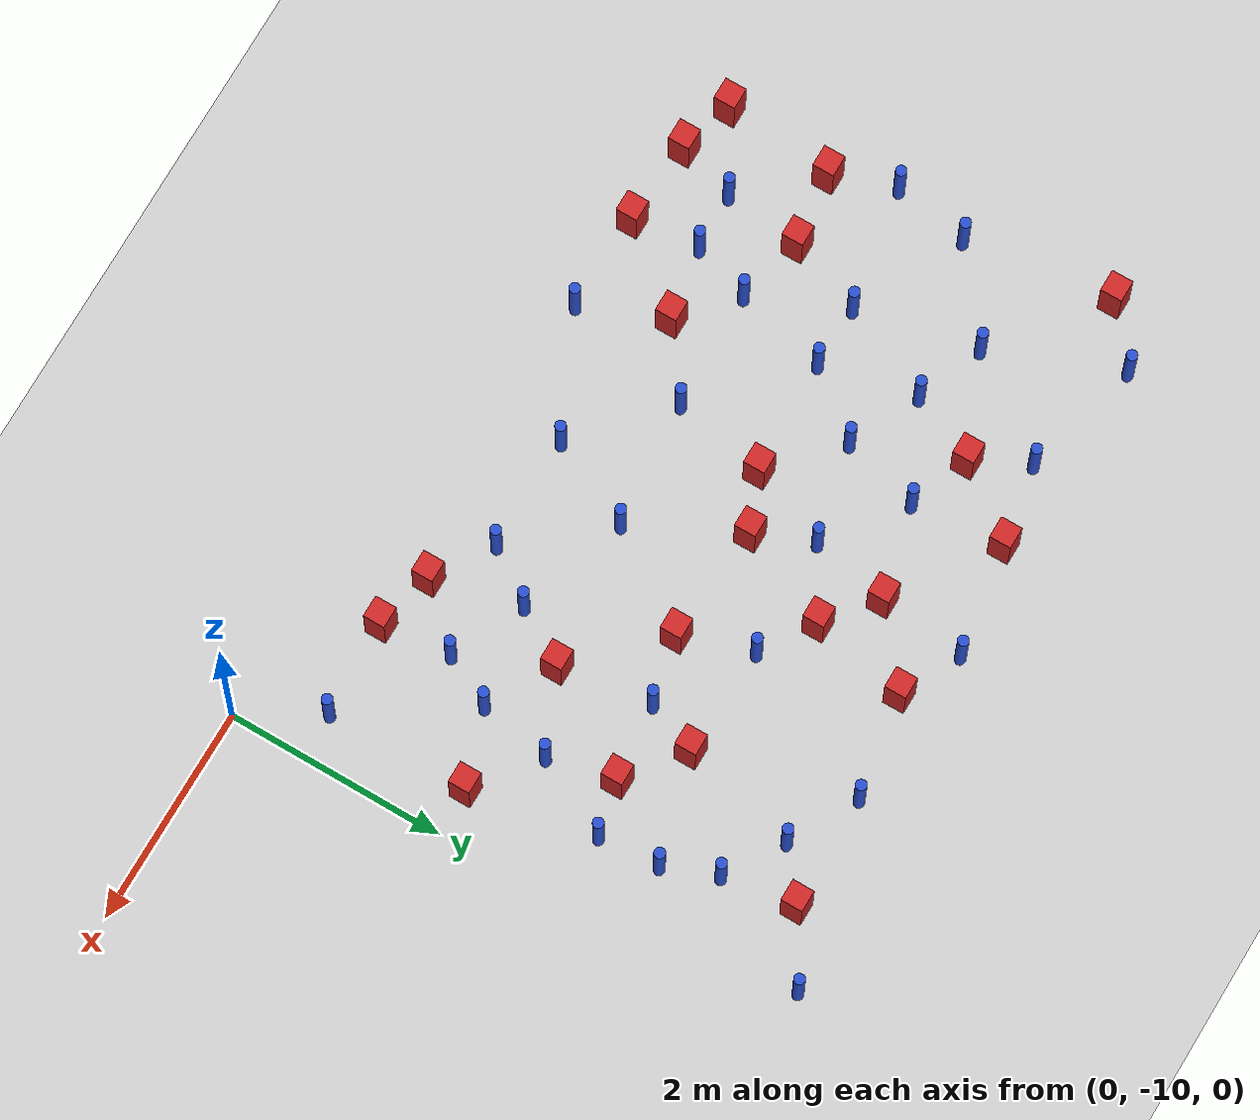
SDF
<sdf version="1.6">
 <world name="default">
  <model name="ground_plane">
   <static>1</static>
   <link name="link">
    <collision name="collision">
     <geometry><plane><normal>0 0 1</normal><size>100 100</size></plane></geometry>
     <surface><friction><ode><mu>100</mu><mu2>50</mu2></ode></friction></surface>
    </collision>
    <visual name="visual">
     <cast_shadows>0</cast_shadows>
     <geometry><plane><normal>0 0 1</normal><size>100 100</size></plane></geometry>
     <material>
      <ambient>1.0 1.0 1.0 1.0</ambient>
      <diffuse>0.8 0.8 0.8 1.0</diffuse>
      <specular>0.01 0.01 0.01 1.000000</specular>
     </material>
    </visual>
   </link>
  </model>
  <model name="pole_obstacle1">
   <static>true</static>
   <pose>-1.99702910462 -5.15641519759 7.38925637345e-09 -8.47170692799e-08 1.2497676507e-08 -1.74513093016e-07</pose>
   <link name="link">
    <pose>0 0 0.3 0 -0 0</pose>
    <inertial>
     <mass>1</mass>
     <inertia><ixx>0.145833</ixx><ixy>0</ixy><ixz>0</ixz><iyy>0.145833</iyy><iyz>0</iyz><izz>0.125</izz></inertia>
    </inertial>
    <collision name="collision">
     <geometry><cylinder><radius>0.05</radius><length>.6</length></cylinder></geometry>
    </collision>
    <visual name="visual">
     <geometry><cylinder><radius>0.05</radius><length>.6</length></cylinder></geometry>
     <material>
      <script><name>Gazebo/Blue</name><uri>file://media/materials/scripts/gazebo.material</uri></script>
     </material>
    </visual>
   </link>
  </model>
  <model name="pole_obstacle3">
   <static>true</static>
   <pose>-6.64374902842 -6.83395566095 7.38925637345e-09 -8.47170692796e-08 1.24976764786e-08 -1.74513093032e-07</pose>
   <link name="link">
    <pose>0 0 0.3 0 -0 0</pose>
    <inertial>
     <mass>1</mass>
     <inertia><ixx>0.145833</ixx><ixy>0</ixy><ixz>0</ixz><iyy>0.145833</iyy><iyz>0</iyz><izz>0.125</izz></inertia>
    </inertial>
    <collision name="collision">
     <geometry><cylinder><radius>0.05</radius><length>.6</length></cylinder></geometry>
    </collision>
    <visual name="visual">
     <geometry><cylinder><radius>0.05</radius><length>.6</length></cylinder></geometry>
     <material>
      <script><name>Gazebo/Blue</name><uri>file://media/materials/scripts/gazebo.material</uri></script>
     </material>
    </visual>
   </link>
  </model>
  <model name="square_post_obstacle9">
   <static>true</static>
   <pose>-4.79178633699 -8.59909285755 1.91545236811e-07 -7.35059704564e-06 1.12565212e-07 2.39332434364e-05</pose>
   <link name="link">
    <pose>0 0 0.25 0 -0 0</pose>
    <inertial>
     <mass>100</mass>
     <inertia>
      <ixx>0.166667</ixx>
      <ixy>0</ixy>
      <ixz>0</ixz>
      <iyy>0.166667</iyy>
      <iyz>0</iyz>
      <izz>0.166667</izz>
     </inertia>
    </inertial>
    <collision name="collision"><geometry><box><size>.2 .2 .5</size></box></geometry></collision>
    <visual name="visual">
     <geometry><box><size>.2 .2 .5</size></box></geometry>
     <material>
      <script><name>Gazebo/Red</name><uri>file://media/materials/scripts/gazebo.material</uri></script>
     </material>
    </visual>
   </link>
  </model>
  <model name="square_post_obstacle13">
   <static>true</static>
   <pose>-5.38632423519 -9.33042135483 1.91545236811e-07 -7.35059704564e-06 1.12565212e-07 2.39332434364e-05</pose>
   <link name="link">
    <pose>0 0 0.25 0 -0 0</pose>
    <inertial>
     <mass>100</mass>
     <inertia>
      <ixx>0.166667</ixx>
      <ixy>0</ixy>
      <ixz>0</ixz>
      <iyy>0.166667</iyy>
      <iyz>0</iyz>
      <izz>0.166667</izz>
     </inertia>
    </inertial>
    <collision name="collision"><geometry><box><size>.2 .2 .5</size></box></geometry></collision>
    <visual name="visual">
     <geometry><box><size>.2 .2 .5</size></box></geometry>
     <material>
      <script><name>Gazebo/Red</name><uri>file://media/materials/scripts/gazebo.material</uri></script>
     </material>
    </visual>
   </link>
  </model>
  <model name="pole_obstacle16">
   <static>true</static>
   <pose>-5.87785930533 -6.22777984309 7.38925637345e-09 -8.47170692796e-08 1.24976764786e-08 -1.74513093032e-07</pose>
   <link name="link">
    <pose>0 0 0.3 0 -0 0</pose>
    <inertial>
     <mass>1</mass>
     <inertia><ixx>0.145833</ixx><ixy>0</ixy><ixz>0</ixz><iyy>0.145833</iyy><iyz>0</iyz><izz>0.125</izz></inertia>
    </inertial>
    <collision name="collision">
     <geometry><cylinder><radius>0.05</radius><length>.6</length></cylinder></geometry>
    </collision>
    <visual name="visual">
     <geometry><cylinder><radius>0.05</radius><length>.6</length></cylinder></geometry>
     <material>
      <script><name>Gazebo/Blue</name><uri>file://media/materials/scripts/gazebo.material</uri></script>
     </material>
    </visual>
   </link>
  </model>
  <model name="pole_obstacle19">
   <static>true</static>
   <pose>-1.82402439647 -7.03155175428 7.38925637345e-09 -8.47170692799e-08 1.24976765033e-08 -1.74513093018e-07</pose>
   <link name="link">
    <pose>0 0 0.3 0 -0 0</pose>
    <inertial>
     <mass>1</mass>
     <inertia><ixx>0.145833</ixx><ixy>0</ixy><ixz>0</ixz><iyy>0.145833</iyy><iyz>0</iyz><izz>0.125</izz></inertia>
    </inertial>
    <collision name="collision">
     <geometry><cylinder><radius>0.05</radius><length>.6</length></cylinder></geometry>
    </collision>
    <visual name="visual">
     <geometry><cylinder><radius>0.05</radius><length>.6</length></cylinder></geometry>
     <material>
      <script><name>Gazebo/Blue</name><uri>file://media/materials/scripts/gazebo.material</uri></script>
     </material>
    </visual>
   </link>
  </model>
  <model name="pole_obstacle24">
   <static>true</static>
   <pose>-2.64297520812 -6.51597644798 7.38925637345e-09 -8.47170692798e-08 1.24976765033e-08 -1.74513093019e-07</pose>
   <link name="link">
    <pose>0 0 0.3 0 -0 0</pose>
    <inertial>
     <mass>1</mass>
     <inertia><ixx>0.145833</ixx><ixy>0</ixy><ixz>0</ixz><iyy>0.145833</iyy><iyz>0</iyz><izz>0.125</izz></inertia>
    </inertial>
    <collision name="collision">
     <geometry><cylinder><radius>0.05</radius><length>.6</length></cylinder></geometry>
    </collision>
    <visual name="visual">
     <geometry><cylinder><radius>0.05</radius><length>.6</length></cylinder></geometry>
     <material>
      <script><name>Gazebo/Blue</name><uri>file://media/materials/scripts/gazebo.material</uri></script>
     </material>
    </visual>
   </link>
  </model>
  <model name="square_post_obstacle37">
   <static>true</static>
   <pose>-2.94164630482 -5.31934953757 1.91545236811e-07 -7.35059704564e-06 1.12565212e-07 2.39332434364e-05</pose>
   <link name="link">
    <pose>0 0 0.25 0 -0 0</pose>
    <inertial>
     <mass>100</mass>
     <inertia>
      <ixx>0.166667</ixx>
      <ixy>0</ixy>
      <ixz>0</ixz>
      <iyy>0.166667</iyy>
      <iyz>0</iyz>
      <izz>0.166667</izz>
     </inertia>
    </inertial>
    <collision name="collision"><geometry><box><size>.2 .2 .5</size></box></geometry></collision>
    <visual name="visual">
     <geometry><box><size>.2 .2 .5</size></box></geometry>
     <material>
      <script><name>Gazebo/Red</name><uri>file://media/materials/scripts/gazebo.material</uri></script>
     </material>
    </visual>
   </link>
  </model>
  <model name="pole_obstacle37">
   <static>true</static>
   <pose>-3.48542436799 -5.04598656458 7.38925637345e-09 -8.47170692794e-08 1.24976764468e-08 -1.7451309304e-07</pose>
   <link name="link">
    <pose>0 0 0.3 0 -0 0</pose>
    <inertial>
     <mass>1</mass>
     <inertia><ixx>0.145833</ixx><ixy>0</ixy><ixz>0</ixz><iyy>0.145833</iyy><iyz>0</iyz><izz>0.125</izz></inertia>
    </inertial>
    <collision name="collision">
     <geometry><cylinder><radius>0.05</radius><length>.6</length></cylinder></geometry>
    </collision>
    <visual name="visual">
     <geometry><cylinder><radius>0.05</radius><length>.6</length></cylinder></geometry>
     <material>
      <script><name>Gazebo/Blue</name><uri>file://media/materials/scripts/gazebo.material</uri></script>
     </material>
    </visual>
   </link>
  </model>
  <model name="square_post_obstacle42">
   <static>true</static>
   <pose>-4.49724141727 -5.21362839173 1.91545236811e-07 -7.35059704564e-06 1.12565212e-07 2.39332434364e-05</pose>
   <link name="link">
    <pose>0 0 0.25 0 -0 0</pose>
    <inertial>
     <mass>100</mass>
     <inertia>
      <ixx>0.166667</ixx>
      <ixy>0</ixy>
      <ixz>0</ixz>
      <iyy>0.166667</iyy>
      <iyz>0</iyz>
      <izz>0.166667</izz>
     </inertia>
    </inertial>
    <collision name="collision"><geometry><box><size>.2 .2 .5</size></box></geometry></collision>
    <visual name="visual">
     <geometry><box><size>.2 .2 .5</size></box></geometry>
     <material>
      <script><name>Gazebo/Red</name><uri>file://media/materials/scripts/gazebo.material</uri></script>
     </material>
    </visual>
   </link>
  </model>
  <model name="pole_obstacle52">
   <static>true</static>
   <pose>-0.664509841783 -6.28637152847 7.38925637345e-09 -8.471706928e-08 1.24976765086e-08 -1.74513093015e-07</pose>
   <link name="link">
    <pose>0 0 0.3 0 -0 0</pose>
    <inertial>
     <mass>1</mass>
     <inertia><ixx>0.145833</ixx><ixy>0</ixy><ixz>0</ixz><iyy>0.145833</iyy><iyz>0</iyz><izz>0.125</izz></inertia>
    </inertial>
    <collision name="collision">
     <geometry><cylinder><radius>0.05</radius><length>.6</length></cylinder></geometry>
    </collision>
    <visual name="visual">
     <geometry><cylinder><radius>0.05</radius><length>.6</length></cylinder></geometry>
     <material>
      <script><name>Gazebo/Blue</name><uri>file://media/materials/scripts/gazebo.material</uri></script>
     </material>
    </visual>
   </link>
  </model>
  <model name="square_post_obstacle57">
   <static>true</static>
   <pose>-2.43869216763 -7.16851486854 1.91545236811e-07 -7.35059704564e-06 1.12565212e-07 2.39332434364e-05</pose>
   <link name="link">
    <pose>0 0 0.25 0 -0 0</pose>
    <inertial>
     <mass>100</mass>
     <inertia>
      <ixx>0.166667</ixx>
      <ixy>0</ixy>
      <ixz>0</ixz>
      <iyy>0.166667</iyy>
      <iyz>0</iyz>
      <izz>0.166667</izz>
     </inertia>
    </inertial>
    <collision name="collision"><geometry><box><size>.2 .2 .5</size></box></geometry></collision>
    <visual name="visual">
     <geometry><box><size>.2 .2 .5</size></box></geometry>
     <material>
      <script><name>Gazebo/Red</name><uri>file://media/materials/scripts/gazebo.material</uri></script>
     </material>
    </visual>
   </link>
  </model>
  <model name="pole_obstacle55">
   <static>true</static>
   <pose>-3.02387262683 -8.04833698265 7.38925637345e-09 -8.47170692795e-08 1.24976764645e-08 -1.74513093041e-07</pose>
   <link name="link">
    <pose>0 0 0.3 0 -0 0</pose>
    <inertial>
     <mass>1</mass>
     <inertia><ixx>0.145833</ixx><ixy>0</ixy><ixz>0</ixz><iyy>0.145833</iyy><iyz>0</iyz><izz>0.125</izz></inertia>
    </inertial>
    <collision name="collision">
     <geometry><cylinder><radius>0.05</radius><length>.6</length></cylinder></geometry>
    </collision>
    <visual name="visual">
     <geometry><cylinder><radius>0.05</radius><length>.6</length></cylinder></geometry>
     <material>
      <script><name>Gazebo/Blue</name><uri>file://media/materials/scripts/gazebo.material</uri></script>
     </material>
    </visual>
   </link>
  </model>
  <model name="pole_obstacle67">
   <static>true</static>
   <pose>-4.48354768701 -9.35528489184 7.38925637345e-09 -8.471706928e-08 1.24976765081e-08 -1.74513093015e-07</pose>
   <link name="link">
    <pose>0 0 0.3 0 -0 0</pose>
    <inertial>
     <mass>1</mass>
     <inertia><ixx>0.145833</ixx><ixy>0</ixy><ixz>0</ixz><iyy>0.145833</iyy><iyz>0</iyz><izz>0.125</izz></inertia>
    </inertial>
    <collision name="collision">
     <geometry><cylinder><radius>0.05</radius><length>.6</length></cylinder></geometry>
    </collision>
    <visual name="visual">
     <geometry><cylinder><radius>0.05</radius><length>.6</length></cylinder></geometry>
     <material>
      <script><name>Gazebo/Blue</name><uri>file://media/materials/scripts/gazebo.material</uri></script>
     </material>
    </visual>
   </link>
  </model>
  <model name="square_post_obstacle72">
   <static>true</static>
   <pose>-0.951039659666 -5.14836713983 1.91545236811e-07 -7.35059704564e-06 1.12565212e-07 2.39332434364e-05</pose>
   <link name="link">
    <pose>0 0 0.25 0 -0 0</pose>
    <inertial>
     <mass>100</mass>
     <inertia>
      <ixx>0.166667</ixx>
      <ixy>0</ixy>
      <ixz>0</ixz>
      <iyy>0.166667</iyy>
      <iyz>0</iyz>
      <izz>0.166667</izz>
     </inertia>
    </inertial>
    <collision name="collision"><geometry><box><size>.2 .2 .5</size></box></geometry></collision>
    <visual name="visual">
     <geometry><box><size>.2 .2 .5</size></box></geometry>
     <material>
      <script><name>Gazebo/Red</name><uri>file://media/materials/scripts/gazebo.material</uri></script>
     </material>
    </visual>
   </link>
  </model>
  <model name="pole_obstacle77">
   <static>true</static>
   <pose>-5.98277088387 -8.73776780066 7.38925637345e-09 -8.471706928e-08 1.24976765081e-08 -1.74513093015e-07</pose>
   <link name="link">
    <pose>0 0 0.3 0 -0 0</pose>
    <inertial>
     <mass>1</mass>
     <inertia><ixx>0.145833</ixx><ixy>0</ixy><ixz>0</ixz><iyy>0.145833</iyy><iyz>0</iyz><izz>0.125</izz></inertia>
    </inertial>
    <collision name="collision">
     <geometry><cylinder><radius>0.05</radius><length>.6</length></cylinder></geometry>
    </collision>
    <visual name="visual">
     <geometry><cylinder><radius>0.05</radius><length>.6</length></cylinder></geometry>
     <material>
      <script><name>Gazebo/Blue</name><uri>file://media/materials/scripts/gazebo.material</uri></script>
     </material>
    </visual>
   </link>
  </model>
  <model name="pole_obstacle83">
   <static>true</static>
   <pose>-1.10115701307 -8.22433812407 7.38925637345e-09 -8.47170692798e-08 1.24976764881e-08 -1.74513093027e-07</pose>
   <link name="link">
    <pose>0 0 0.3 0 -0 0</pose>
    <inertial>
     <mass>1</mass>
     <inertia><ixx>0.145833</ixx><ixy>0</ixy><ixz>0</ixz><iyy>0.145833</iyy><iyz>0</iyz><izz>0.125</izz></inertia>
    </inertial>
    <collision name="collision">
     <geometry><cylinder><radius>0.05</radius><length>.6</length></cylinder></geometry>
    </collision>
    <visual name="visual">
     <geometry><cylinder><radius>0.05</radius><length>.6</length></cylinder></geometry>
     <material>
      <script><name>Gazebo/Blue</name><uri>file://media/materials/scripts/gazebo.material</uri></script>
     </material>
    </visual>
   </link>
  </model>
  <model name="square_post_obstacle86">
   <static>true</static>
   <pose>-3.50709698358 -7.08260596317 1.91545236811e-07 -7.35059704564e-06 1.12565212e-07 2.39332434364e-05</pose>
   <link name="link">
    <pose>0 0 0.25 0 -0 0</pose>
    <inertial>
     <mass>100</mass>
     <inertia>
      <ixx>0.166667</ixx>
      <ixy>0</ixy>
      <ixz>0</ixz>
      <iyy>0.166667</iyy>
      <iyz>0</iyz>
      <izz>0.166667</izz>
     </inertia>
    </inertial>
    <collision name="collision"><geometry><box><size>.2 .2 .5</size></box></geometry></collision>
    <visual name="visual">
     <geometry><box><size>.2 .2 .5</size></box></geometry>
     <material>
      <script><name>Gazebo/Red</name><uri>file://media/materials/scripts/gazebo.material</uri></script>
     </material>
    </visual>
   </link>
  </model>
  <model name="square_post_obstacle90">
   <static>true</static>
   <pose>-1.81384969152 -9.18658534339 1.91545236811e-07 -7.35059704564e-06 1.12565212e-07 2.39332434364e-05</pose>
   <link name="link">
    <pose>0 0 0.25 0 -0 0</pose>
    <inertial>
     <mass>100</mass>
     <inertia>
      <ixx>0.166667</ixx>
      <ixy>0</ixy>
      <ixz>0</ixz>
      <iyy>0.166667</iyy>
      <iyz>0</iyz>
      <izz>0.166667</izz>
     </inertia>
    </inertial>
    <collision name="collision"><geometry><box><size>.2 .2 .5</size></box></geometry></collision>
    <visual name="visual">
     <geometry><box><size>.2 .2 .5</size></box></geometry>
     <material>
      <script><name>Gazebo/Red</name><uri>file://media/materials/scripts/gazebo.material</uri></script>
     </material>
    </visual>
   </link>
  </model>
  <model name="pole_obstacle102">
   <static>true</static>
   <pose>-4.60714175064 -6.76102337957 7.38925637345e-09 -8.47170692796e-08 1.24976764786e-08 -1.74513093032e-07</pose>
   <link name="link">
    <pose>0 0 0.3 0 -0 0</pose>
    <inertial>
     <mass>1</mass>
     <inertia><ixx>0.145833</ixx><ixy>0</ixy><ixz>0</ixz><iyy>0.145833</iyy><iyz>0</iyz><izz>0.125</izz></inertia>
    </inertial>
    <collision name="collision">
     <geometry><cylinder><radius>0.05</radius><length>.6</length></cylinder></geometry>
    </collision>
    <visual name="visual">
     <geometry><cylinder><radius>0.05</radius><length>.6</length></cylinder></geometry>
     <material>
      <script><name>Gazebo/Blue</name><uri>file://media/materials/scripts/gazebo.material</uri></script>
     </material>
    </visual>
   </link>
  </model>
  <model name="pole_obstacle103">
   <static>true</static>
   <pose>-5.07001106851 -7.33653204421 7.38925637345e-09 -8.47170692796e-08 1.24976764786e-08 -1.74513093032e-07</pose>
   <link name="link">
    <pose>0 0 0.3 0 -0 0</pose>
    <inertial>
     <mass>1</mass>
     <inertia><ixx>0.145833</ixx><ixy>0</ixy><ixz>0</ixz><iyy>0.145833</iyy><iyz>0</iyz><izz>0.125</izz></inertia>
    </inertial>
    <collision name="collision">
     <geometry><cylinder><radius>0.05</radius><length>.6</length></cylinder></geometry>
    </collision>
    <visual name="visual">
     <geometry><cylinder><radius>0.05</radius><length>.6</length></cylinder></geometry>
     <material>
      <script><name>Gazebo/Blue</name><uri>file://media/materials/scripts/gazebo.material</uri></script>
     </material>
    </visual>
   </link>
  </model>
  <model name="pole_obstacle111">
   <static>true</static>
   <pose>-5.27162221645 -8.17641989947 7.38925637345e-09 -8.471706928e-08 1.24976765081e-08 -1.74513093015e-07</pose>
   <link name="link">
    <pose>0 0 0.3 0 -0 0</pose>
    <inertial>
     <mass>1</mass>
     <inertia><ixx>0.145833</ixx><ixy>0</ixy><ixz>0</ixz><iyy>0.145833</iyy><iyz>0</iyz><izz>0.125</izz></inertia>
    </inertial>
    <collision name="collision">
     <geometry><cylinder><radius>0.05</radius><length>.6</length></cylinder></geometry>
    </collision>
    <visual name="visual">
     <geometry><cylinder><radius>0.05</radius><length>.6</length></cylinder></geometry>
     <material>
      <script><name>Gazebo/Blue</name><uri>file://media/materials/scripts/gazebo.material</uri></script>
     </material>
    </visual>
   </link>
  </model>
  <model name="pole_obstacle115">
   <static>true</static>
   <pose>-2.34206392092 -8.84731126682 7.38925637345e-09 -8.47170692793e-08 1.24976764408e-08 -1.74513093041e-07</pose>
   <link name="link">
    <pose>0 0 0.3 0 -0 0</pose>
    <inertial>
     <mass>1</mass>
     <inertia><ixx>0.145833</ixx><ixy>0</ixy><ixz>0</ixz><iyy>0.145833</iyy><iyz>0</iyz><izz>0.125</izz></inertia>
    </inertial>
    <collision name="collision">
     <geometry><cylinder><radius>0.05</radius><length>.6</length></cylinder></geometry>
    </collision>
    <visual name="visual">
     <geometry><cylinder><radius>0.05</radius><length>.6</length></cylinder></geometry>
     <material>
      <script><name>Gazebo/Blue</name><uri>file://media/materials/scripts/gazebo.material</uri></script>
     </material>
    </visual>
   </link>
  </model>
  <model name="pole_obstacle118">
   <static>true</static>
   <pose>-0.394079311106 -9.2963381243 7.38925637345e-09 -8.47170692796e-08 1.24976764724e-08 -1.74513093036e-07</pose>
   <link name="link">
    <pose>0 0 0.3 0 -0 0</pose>
    <inertial>
     <mass>1</mass>
     <inertia><ixx>0.145833</ixx><ixy>0</ixy><ixz>0</ixz><iyy>0.145833</iyy><iyz>0</iyz><izz>0.125</izz></inertia>
    </inertial>
    <collision name="collision">
     <geometry><cylinder><radius>0.05</radius><length>.6</length></cylinder></geometry>
    </collision>
    <visual name="visual">
     <geometry><cylinder><radius>0.05</radius><length>.6</length></cylinder></geometry>
     <material>
      <script><name>Gazebo/Blue</name><uri>file://media/materials/scripts/gazebo.material</uri></script>
     </material>
    </visual>
   </link>
  </model>
  <model name="square_post_obstacle106">
   <static>true</static>
   <pose>-6.56755779234 -8.10856985931 1.91545236811e-07 -7.35059704564e-06 1.12565212e-07 2.39332434364e-05</pose>
   <link name="link">
    <pose>0 0 0.25 0 -0 0</pose>
    <inertial>
     <mass>100</mass>
     <inertia>
      <ixx>0.166667</ixx>
      <ixy>0</ixy>
      <ixz>0</ixz>
      <iyy>0.166667</iyy>
      <iyz>0</iyz>
      <izz>0.166667</izz>
     </inertia>
    </inertial>
    <collision name="collision"><geometry><box><size>.2 .2 .5</size></box></geometry></collision>
    <visual name="visual">
     <geometry><box><size>.2 .2 .5</size></box></geometry>
     <material>
      <script><name>Gazebo/Red</name><uri>file://media/materials/scripts/gazebo.material</uri></script>
     </material>
    </visual>
   </link>
  </model>
  <model name="pole_obstacle123">
   <static>true</static>
   <pose>-1.33563160653 -8.68640139054 7.38925637345e-09 -8.47170692798e-08 1.24976764881e-08 -1.74513093027e-07</pose>
   <link name="link">
    <pose>0 0 0.3 0 -0 0</pose>
    <inertial>
     <mass>1</mass>
     <inertia><ixx>0.145833</ixx><ixy>0</ixy><ixz>0</ixz><iyy>0.145833</iyy><iyz>0</iyz><izz>0.125</izz></inertia>
    </inertial>
    <collision name="collision">
     <geometry><cylinder><radius>0.05</radius><length>.6</length></cylinder></geometry>
    </collision>
    <visual name="visual">
     <geometry><cylinder><radius>0.05</radius><length>.6</length></cylinder></geometry>
     <material>
      <script><name>Gazebo/Blue</name><uri>file://media/materials/scripts/gazebo.material</uri></script>
     </material>
    </visual>
   </link>
  </model>
  <model name="pole_obstacle124">
   <static>true</static>
   <pose>-6.76708064355 -7.52695739733 7.38925637345e-09 -8.47170692796e-08 1.24976764786e-08 -1.74513093032e-07</pose>
   <link name="link">
    <pose>0 0 0.3 0 -0 0</pose>
    <inertial>
     <mass>1</mass>
     <inertia><ixx>0.145833</ixx><ixy>0</ixy><ixz>0</ixz><iyy>0.145833</iyy><iyz>0</iyz><izz>0.125</izz></inertia>
    </inertial>
    <collision name="collision">
     <geometry><cylinder><radius>0.05</radius><length>.6</length></cylinder></geometry>
    </collision>
    <visual name="visual">
     <geometry><cylinder><radius>0.05</radius><length>.6</length></cylinder></geometry>
     <material>
      <script><name>Gazebo/Blue</name><uri>file://media/materials/scripts/gazebo.material</uri></script>
     </material>
    </visual>
   </link>
  </model>
  <model name="pole_obstacle130">
   <static>true</static>
   <pose>-1.37420782608 -5.48663319415 7.38925637345e-09 -8.47170692799e-08 1.24976765033e-08 -1.74513093018e-07</pose>
   <link name="link">
    <pose>0 0 0.3 0 -0 0</pose>
    <inertial>
     <mass>1</mass>
     <inertia><ixx>0.145833</ixx><ixy>0</ixy><ixz>0</ixz><iyy>0.145833</iyy><iyz>0</iyz><izz>0.125</izz></inertia>
    </inertial>
    <collision name="collision">
     <geometry><cylinder><radius>0.05</radius><length>.6</length></cylinder></geometry>
    </collision>
    <visual name="visual">
     <geometry><cylinder><radius>0.05</radius><length>.6</length></cylinder></geometry>
     <material>
      <script><name>Gazebo/Blue</name><uri>file://media/materials/scripts/gazebo.material</uri></script>
     </material>
    </visual>
   </link>
  </model>
  <model name="pole_obstacle133">
   <static>true</static>
   <pose>-0.334972487453 -4.77382043636 7.38925637345e-09 -8.471706928e-08 1.24976765079e-08 -1.74513093015e-07</pose>
   <link name="link">
    <pose>0 0 0.3 0 -0 0</pose>
    <inertial>
     <mass>1</mass>
     <inertia><ixx>0.145833</ixx><ixy>0</ixy><ixz>0</ixz><iyy>0.145833</iyy><iyz>0</iyz><izz>0.125</izz></inertia>
    </inertial>
    <collision name="collision">
     <geometry><cylinder><radius>0.05</radius><length>.6</length></cylinder></geometry>
    </collision>
    <visual name="visual">
     <geometry><cylinder><radius>0.05</radius><length>.6</length></cylinder></geometry>
     <material>
      <script><name>Gazebo/Blue</name><uri>file://media/materials/scripts/gazebo.material</uri></script>
     </material>
    </visual>
   </link>
  </model>
  <model name="pole_obstacle135">
   <static>true</static>
   <pose>-5.22963453391 -5.34188394178 7.38925637345e-09 -8.47170692796e-08 1.24976764786e-08 -1.74513093032e-07</pose>
   <link name="link">
    <pose>0 0 0.3 0 -0 0</pose>
    <inertial>
     <mass>1</mass>
     <inertia><ixx>0.145833</ixx><ixy>0</ixy><ixz>0</ixz><iyy>0.145833</iyy><iyz>0</iyz><izz>0.125</izz></inertia>
    </inertial>
    <collision name="collision">
     <geometry><cylinder><radius>0.05</radius><length>.6</length></cylinder></geometry>
    </collision>
    <visual name="visual">
     <geometry><cylinder><radius>0.05</radius><length>.6</length></cylinder></geometry>
     <material>
      <script><name>Gazebo/Blue</name><uri>file://media/materials/scripts/gazebo.material</uri></script>
     </material>
    </visual>
   </link>
  </model>
  <model name="square_post_obstacle121">
   <static>true</static>
   <pose>-1.70586866297 -7.88182987097 1.91545236811e-07 -7.35059704564e-06 1.12565212e-07 2.39332434364e-05</pose>
   <link name="link">
    <pose>0 0 0.25 0 -0 0</pose>
    <inertial>
     <mass>100</mass>
     <inertia>
      <ixx>0.166667</ixx>
      <ixy>0</ixy>
      <ixz>0</ixz>
      <iyy>0.166667</iyy>
      <iyz>0</iyz>
      <izz>0.166667</izz>
     </inertia>
    </inertial>
    <collision name="collision"><geometry><box><size>.2 .2 .5</size></box></geometry></collision>
    <visual name="visual">
     <geometry><box><size>.2 .2 .5</size></box></geometry>
     <material>
      <script><name>Gazebo/Red</name><uri>file://media/materials/scripts/gazebo.material</uri></script>
     </material>
    </visual>
   </link>
  </model>
  <model name="square_post_obstacle125">
   <static>true</static>
   <pose>-0.422527196292 -7.99829386612 1.91545236811e-07 -7.35059704564e-06 1.12565212e-07 2.39332434364e-05</pose>
   <link name="link">
    <pose>0 0 0.25 0 -0 0</pose>
    <inertial>
     <mass>100</mass>
     <inertia>
      <ixx>0.166667</ixx>
      <ixy>0</ixy>
      <ixz>0</ixz>
      <iyy>0.166667</iyy>
      <iyz>0</iyz>
      <izz>0.166667</izz>
     </inertia>
    </inertial>
    <collision name="collision"><geometry><box><size>.2 .2 .5</size></box></geometry></collision>
    <visual name="visual">
     <geometry><box><size>.2 .2 .5</size></box></geometry>
     <material>
      <script><name>Gazebo/Red</name><uri>file://media/materials/scripts/gazebo.material</uri></script>
     </material>
    </visual>
   </link>
  </model>
  <model name="square_post_obstacle130">
   <static>true</static>
   <pose>-1.64559210101 -6.56291384768 1.91545236811e-07 -7.35059704564e-06 1.12565212e-07 2.39332434364e-05</pose>
   <link name="link">
    <pose>0 0 0.25 0 -0 0</pose>
    <inertial>
     <mass>100</mass>
     <inertia>
      <ixx>0.166667</ixx>
      <ixy>0</ixy>
      <ixz>0</ixz>
      <iyy>0.166667</iyy>
      <iyz>0</iyz>
      <izz>0.166667</izz>
     </inertia>
    </inertial>
    <collision name="collision"><geometry><box><size>.2 .2 .5</size></box></geometry></collision>
    <visual name="visual">
     <geometry><box><size>.2 .2 .5</size></box></geometry>
     <material>
      <script><name>Gazebo/Red</name><uri>file://media/materials/scripts/gazebo.material</uri></script>
     </material>
    </visual>
   </link>
  </model>
  <model name="pole_obstacle146">
   <static>true</static>
   <pose>-4.18104618 -8.14875116515 7.38925637345e-09 -8.471706928e-08 1.24976765081e-08 -1.74513093015e-07</pose>
   <link name="link">
    <pose>0 0 0.3 0 -0 0</pose>
    <inertial>
     <mass>1</mass>
     <inertia><ixx>0.145833</ixx><ixy>0</ixy><ixz>0</ixz><iyy>0.145833</iyy><iyz>0</iyz><izz>0.125</izz></inertia>
    </inertial>
    <collision name="collision">
     <geometry><cylinder><radius>0.05</radius><length>.6</length></cylinder></geometry>
    </collision>
    <visual name="visual">
     <geometry><cylinder><radius>0.05</radius><length>.6</length></cylinder></geometry>
     <material>
      <script><name>Gazebo/Blue</name><uri>file://media/materials/scripts/gazebo.material</uri></script>
     </material>
    </visual>
   </link>
  </model>
  <model name="pole_obstacle151">
   <static>true</static>
   <pose>-0.627647110226 -6.84652721539 7.38925637345e-09 -8.471706928e-08 1.24976765086e-08 -1.74513093015e-07</pose>
   <link name="link">
    <pose>0 0 0.3 0 -0 0</pose>
    <inertial>
     <mass>1</mass>
     <inertia><ixx>0.145833</ixx><ixy>0</ixy><ixz>0</ixz><iyy>0.145833</iyy><iyz>0</iyz><izz>0.125</izz></inertia>
    </inertial>
    <collision name="collision">
     <geometry><cylinder><radius>0.05</radius><length>.6</length></cylinder></geometry>
    </collision>
    <visual name="visual">
     <geometry><cylinder><radius>0.05</radius><length>.6</length></cylinder></geometry>
     <material>
      <script><name>Gazebo/Blue</name><uri>file://media/materials/scripts/gazebo.material</uri></script>
     </material>
    </visual>
   </link>
  </model>
  <model name="square_post_obstacle141">
   <static>true</static>
   <pose>-6.15573379933 -9.27544736337 1.91545236811e-07 -7.35059704564e-06 1.12565212e-07 2.39332434364e-05</pose>
   <link name="link">
    <pose>0 0 0.25 0 -0 0</pose>
    <inertial>
     <mass>100</mass>
     <inertia>
      <ixx>0.166667</ixx>
      <ixy>0</ixy>
      <ixz>0</ixz>
      <iyy>0.166667</iyy>
      <iyz>0</iyz>
      <izz>0.166667</izz>
     </inertia>
    </inertial>
    <collision name="collision"><geometry><box><size>.2 .2 .5</size></box></geometry></collision>
    <visual name="visual">
     <geometry><box><size>.2 .2 .5</size></box></geometry>
     <material>
      <script><name>Gazebo/Red</name><uri>file://media/materials/scripts/gazebo.material</uri></script>
     </material>
    </visual>
   </link>
  </model>
  <model name="square_post_obstacle146">
   <static>true</static>
   <pose>-5.90420786642 -8.02311519004 1.91545236811e-07 -7.35059704564e-06 1.12565212e-07 2.39332434364e-05</pose>
   <link name="link">
    <pose>0 0 0.25 0 -0 0</pose>
    <inertial>
     <mass>100</mass>
     <inertia>
      <ixx>0.166667</ixx>
      <ixy>0</ixy>
      <ixz>0</ixz>
      <iyy>0.166667</iyy>
      <iyz>0</iyz>
      <izz>0.166667</izz>
     </inertia>
    </inertial>
    <collision name="collision"><geometry><box><size>.2 .2 .5</size></box></geometry></collision>
    <visual name="visual">
     <geometry><box><size>.2 .2 .5</size></box></geometry>
     <material>
      <script><name>Gazebo/Red</name><uri>file://media/materials/scripts/gazebo.material</uri></script>
     </material>
    </visual>
   </link>
  </model>
  <model name="square_post_obstacle154">
   <static>true</static>
   <pose>-4.01889586212 -7.29428222931 1.91545236811e-07 -7.35059704564e-06 1.12565212e-07 2.39332434364e-05</pose>
   <link name="link">
    <pose>0 0 0.25 0 -0 0</pose>
    <inertial>
     <mass>100</mass>
     <inertia>
      <ixx>0.166667</ixx>
      <ixy>0</ixy>
      <ixz>0</ixz>
      <iyy>0.166667</iyy>
      <iyz>0</iyz>
      <izz>0.166667</izz>
     </inertia>
    </inertial>
    <collision name="collision"><geometry><box><size>.2 .2 .5</size></box></geometry></collision>
    <visual name="visual">
     <geometry><box><size>.2 .2 .5</size></box></geometry>
     <material>
      <script><name>Gazebo/Red</name><uri>file://media/materials/scripts/gazebo.material</uri></script>
     </material>
    </visual>
   </link>
  </model>
  <model name="pole_obstacle163">
   <static>true</static>
   <pose>-2.00321000423 -8.37885171031 7.38925637345e-09 -8.47170692797e-08 1.24976764827e-08 -1.7451309303e-07</pose>
   <link name="link">
    <pose>0 0 0.3 0 -0 0</pose>
    <inertial>
     <mass>1</mass>
     <inertia><ixx>0.145833</ixx><ixy>0</ixy><ixz>0</ixz><iyy>0.145833</iyy><iyz>0</iyz><izz>0.125</izz></inertia>
    </inertial>
    <collision name="collision">
     <geometry><cylinder><radius>0.05</radius><length>.6</length></cylinder></geometry>
    </collision>
    <visual name="visual">
     <geometry><cylinder><radius>0.05</radius><length>.6</length></cylinder></geometry>
     <material>
      <script><name>Gazebo/Blue</name><uri>file://media/materials/scripts/gazebo.material</uri></script>
     </material>
    </visual>
   </link>
  </model>
  <model name="pole_obstacle168">
   <static>true</static>
   <pose>-3.72066796879 -6.55684764335 7.38925637345e-09 -8.47170692798e-08 1.24976765033e-08 -1.74513093019e-07</pose>
   <link name="link">
    <pose>0 0 0.3 0 -0 0</pose>
    <inertial>
     <mass>1</mass>
     <inertia><ixx>0.145833</ixx><ixy>0</ixy><ixz>0</ixz><iyy>0.145833</iyy><iyz>0</iyz><izz>0.125</izz></inertia>
    </inertial>
    <collision name="collision">
     <geometry><cylinder><radius>0.05</radius><length>.6</length></cylinder></geometry>
    </collision>
    <visual name="visual">
     <geometry><cylinder><radius>0.05</radius><length>.6</length></cylinder></geometry>
     <material>
      <script><name>Gazebo/Blue</name><uri>file://media/materials/scripts/gazebo.material</uri></script>
     </material>
    </visual>
   </link>
  </model>
  <model name="pole_obstacle170">
   <static>true</static>
   <pose>-6.33877661577 -5.0621028948 7.38925637345e-09 -8.47170692796e-08 1.24976764786e-08 -1.74513093032e-07</pose>
   <link name="link">
    <pose>0 0 0.3 0 -0 0</pose>
    <inertial>
     <mass>1</mass>
     <inertia><ixx>0.145833</ixx><ixy>0</ixy><ixz>0</ixz><iyy>0.145833</iyy><iyz>0</iyz><izz>0.125</izz></inertia>
    </inertial>
    <collision name="collision">
     <geometry><cylinder><radius>0.05</radius><length>.6</length></cylinder></geometry>
    </collision>
    <visual name="visual">
     <geometry><cylinder><radius>0.05</radius><length>.6</length></cylinder></geometry>
     <material>
      <script><name>Gazebo/Blue</name><uri>file://media/materials/scripts/gazebo.material</uri></script>
     </material>
    </visual>
   </link>
  </model>
  <model name="pole_obstacle173">
   <static>true</static>
   <pose>-5.64331831747 -7.33034303848 7.38925637345e-09 -8.47170692796e-08 1.24976764786e-08 -1.74513093032e-07</pose>
   <link name="link">
    <pose>0 0 0.3 0 -0 0</pose>
    <inertial>
     <mass>1</mass>
     <inertia><ixx>0.145833</ixx><ixy>0</ixy><ixz>0</ixz><iyy>0.145833</iyy><iyz>0</iyz><izz>0.125</izz></inertia>
    </inertial>
    <collision name="collision">
     <geometry><cylinder><radius>0.05</radius><length>.6</length></cylinder></geometry>
    </collision>
    <visual name="visual">
     <geometry><cylinder><radius>0.05</radius><length>.6</length></cylinder></geometry>
     <material>
      <script><name>Gazebo/Blue</name><uri>file://media/materials/scripts/gazebo.material</uri></script>
     </material>
    </visual>
   </link>
  </model>
  <model name="square_post_obstacle167">
   <static>true</static>
   <pose>-3.57597913385 -5.84534227649 1.91545236811e-07 -7.35059704564e-06 1.12565212e-07 2.39332434364e-05</pose>
   <link name="link">
    <pose>0 0 0.25 0 -0 0</pose>
    <inertial>
     <mass>100</mass>
     <inertia>
      <ixx>0.166667</ixx>
      <ixy>0</ixy>
      <ixz>0</ixz>
      <iyy>0.166667</iyy>
      <iyz>0</iyz>
      <izz>0.166667</izz>
     </inertia>
    </inertial>
    <collision name="collision"><geometry><box><size>.2 .2 .5</size></box></geometry></collision>
    <visual name="visual">
     <geometry><box><size>.2 .2 .5</size></box></geometry>
     <material>
      <script><name>Gazebo/Red</name><uri>file://media/materials/scripts/gazebo.material</uri></script>
     </material>
    </visual>
   </link>
  </model>
  <model name="pole_obstacle178">
   <static>true</static>
   <pose>-0.848191119124 -5.807596373 7.38925637345e-09 -8.471706928e-08 1.24976765086e-08 -1.74513093015e-07</pose>
   <link name="link">
    <pose>0 0 0.3 0 -0 0</pose>
    <inertial>
     <mass>1</mass>
     <inertia><ixx>0.145833</ixx><ixy>0</ixy><ixz>0</ixz><iyy>0.145833</iyy><iyz>0</iyz><izz>0.125</izz></inertia>
    </inertial>
    <collision name="collision">
     <geometry><cylinder><radius>0.05</radius><length>.6</length></cylinder></geometry>
    </collision>
    <visual name="visual">
     <geometry><cylinder><radius>0.05</radius><length>.6</length></cylinder></geometry>
     <material>
      <script><name>Gazebo/Blue</name><uri>file://media/materials/scripts/gazebo.material</uri></script>
     </material>
    </visual>
   </link>
  </model>
  <model name="square_post_obstacle169">
   <static>true</static>
   <pose>-3.12281505871 -6.2041692048 1.91545236811e-07 -7.35059704564e-06 1.12565212e-07 2.39332434364e-05</pose>
   <link name="link">
    <pose>0 0 0.25 0 -0 0</pose>
    <inertial>
     <mass>100</mass>
     <inertia>
      <ixx>0.166667</ixx>
      <ixy>0</ixy>
      <ixz>0</ixz>
      <iyy>0.166667</iyy>
      <iyz>0</iyz>
      <izz>0.166667</izz>
     </inertia>
    </inertial>
    <collision name="collision"><geometry><box><size>.2 .2 .5</size></box></geometry></collision>
    <visual name="visual">
     <geometry><box><size>.2 .2 .5</size></box></geometry>
     <material>
      <script><name>Gazebo/Red</name><uri>file://media/materials/scripts/gazebo.material</uri></script>
     </material>
    </visual>
   </link>
  </model>
  <model name="pole_obstacle181">
   <static>true</static>
   <pose>-3.38831780319 -8.84504314314 7.38925637345e-09 -8.47170692793e-08 1.24976764408e-08 -1.74513093041e-07</pose>
   <link name="link">
    <pose>0 0 0.3 0 -0 0</pose>
    <inertial>
     <mass>1</mass>
     <inertia><ixx>0.145833</ixx><ixy>0</ixy><ixz>0</ixz><iyy>0.145833</iyy><iyz>0</iyz><izz>0.125</izz></inertia>
    </inertial>
    <collision name="collision">
     <geometry><cylinder><radius>0.05</radius><length>.6</length></cylinder></geometry>
    </collision>
    <visual name="visual">
     <geometry><cylinder><radius>0.05</radius><length>.6</length></cylinder></geometry>
     <material>
      <script><name>Gazebo/Blue</name><uri>file://media/materials/scripts/gazebo.material</uri></script>
     </material>
    </visual>
   </link>
  </model>
  <model name="pole_obstacle188">
   <static>true</static>
   <pose>-0.980123657743 -7.56296460198 7.38925637345e-09 -8.47170692799e-08 1.2497676509e-08 -1.74513093015e-07</pose>
   <link name="link">
    <pose>0 0 0.3 0 -0 0</pose>
    <inertial>
     <mass>1</mass>
     <inertia><ixx>0.145833</ixx><ixy>0</ixy><ixz>0</ixz><iyy>0.145833</iyy><iyz>0</iyz><izz>0.125</izz></inertia>
    </inertial>
    <collision name="collision">
     <geometry><cylinder><radius>0.05</radius><length>.6</length></cylinder></geometry>
    </collision>
    <visual name="visual">
     <geometry><cylinder><radius>0.05</radius><length>.6</length></cylinder></geometry>
     <material>
      <script><name>Gazebo/Blue</name><uri>file://media/materials/scripts/gazebo.material</uri></script>
     </material>
    </visual>
   </link>
  </model>
  <model name="square_post_obstacle185">
   <static>true</static>
   <pose>-6.66338090326 -9.12743377895 1.91545236811e-07 -7.35059704564e-06 1.12565212e-07 2.39332434364e-05</pose>
   <link name="link">
    <pose>0 0 0.25 0 -0 0</pose>
    <inertial>
     <mass>100</mass>
     <inertia>
      <ixx>0.166667</ixx>
      <ixy>0</ixy>
      <ixz>0</ixz>
      <iyy>0.166667</iyy>
      <iyz>0</iyz>
      <izz>0.166667</izz>
     </inertia>
    </inertial>
    <collision name="collision"><geometry><box><size>.2 .2 .5</size></box></geometry></collision>
    <visual name="visual">
     <geometry><box><size>.2 .2 .5</size></box></geometry>
     <material>
      <script><name>Gazebo/Red</name><uri>file://media/materials/scripts/gazebo.material</uri></script>
     </material>
    </visual>
   </link>
  </model>
  <model name="square_post_obstacle186">
   <static>true</static>
   <pose>-1.27451284153 -9.32560407298 1.91545236811e-07 -7.35059704564e-06 1.12565212e-07 2.39332434364e-05</pose>
   <link name="link">
    <pose>0 0 0.25 0 -0 0</pose>
    <inertial>
     <mass>100</mass>
     <inertia>
      <ixx>0.166667</ixx>
      <ixy>0</ixy>
      <ixz>0</ixz>
      <iyy>0.166667</iyy>
      <iyz>0</iyz>
      <izz>0.166667</izz>
     </inertia>
    </inertial>
    <collision name="collision"><geometry><box><size>.2 .2 .5</size></box></geometry></collision>
    <visual name="visual">
     <geometry><box><size>.2 .2 .5</size></box></geometry>
     <material>
      <script><name>Gazebo/Red</name><uri>file://media/materials/scripts/gazebo.material</uri></script>
     </material>
    </visual>
   </link>
  </model>
  <model name="pole_obstacle195">
   <static>true</static>
   <pose>-4.41252214575 -6.05075793088 7.38925637345e-09 -8.47170692796e-08 1.24976764786e-08 -1.74513093032e-07</pose>
   <link name="link">
    <pose>0 0 0.3 0 -0 0</pose>
    <inertial>
     <mass>1</mass>
     <inertia><ixx>0.145833</ixx><ixy>0</ixy><ixz>0</ixz><iyy>0.145833</iyy><iyz>0</iyz><izz>0.125</izz></inertia>
    </inertial>
    <collision name="collision">
     <geometry><cylinder><radius>0.05</radius><length>.6</length></cylinder></geometry>
    </collision>
    <visual name="visual">
     <geometry><cylinder><radius>0.05</radius><length>.6</length></cylinder></geometry>
     <material>
      <script><name>Gazebo/Blue</name><uri>file://media/materials/scripts/gazebo.material</uri></script>
     </material>
    </visual>
   </link>
  </model>
  <model name="pole_obstacle211">
   <static>true</static>
   <pose>-5.45325540666 -8.71306855323 7.38925637345e-09 -8.471706928e-08 1.24976765081e-08 -1.74513093015e-07</pose>
   <link name="link">
    <pose>0 0 0.3 0 -0 0</pose>
    <inertial>
     <mass>1</mass>
     <inertia><ixx>0.145833</ixx><ixy>0</ixy><ixz>0</ixz><iyy>0.145833</iyy><iyz>0</iyz><izz>0.125</izz></inertia>
    </inertial>
    <collision name="collision">
     <geometry><cylinder><radius>0.05</radius><length>.6</length></cylinder></geometry>
    </collision>
    <visual name="visual">
     <geometry><cylinder><radius>0.05</radius><length>.6</length></cylinder></geometry>
     <material>
      <script><name>Gazebo/Blue</name><uri>file://media/materials/scripts/gazebo.material</uri></script>
     </material>
    </visual>
   </link>
  </model>
  <model name="square_post_obstacle202">
   <static>true</static>
   <pose>-6.83648785208 -5.48039485043 1.91545236811e-07 -7.35059704564e-06 1.12565212e-07 2.39332434364e-05</pose>
   <link name="link">
    <pose>0 0 0.25 0 -0 0</pose>
    <inertial>
     <mass>100</mass>
     <inertia>
      <ixx>0.166667</ixx>
      <ixy>0</ixy>
      <ixz>0</ixz>
      <iyy>0.166667</iyy>
      <iyz>0</iyz>
      <izz>0.166667</izz>
     </inertia>
    </inertial>
    <collision name="collision"><geometry><box><size>.2 .2 .5</size></box></geometry></collision>
    <visual name="visual">
     <geometry><box><size>.2 .2 .5</size></box></geometry>
     <material>
      <script><name>Gazebo/Red</name><uri>file://media/materials/scripts/gazebo.material</uri></script>
     </material>
    </visual>
   </link>
  </model>
  <model name="square_post_obstacle207">
   <static>true</static>
   <pose>-4.97813943472 -5.84154099068 1.91545236811e-07 -7.35059704564e-06 1.12565212e-07 2.39332434364e-05</pose>
   <link name="link">
    <pose>0 0 0.25 0 -0 0</pose>
    <inertial>
     <mass>100</mass>
     <inertia>
      <ixx>0.166667</ixx>
      <ixy>0</ixy>
      <ixz>0</ixz>
      <iyy>0.166667</iyy>
      <iyz>0</iyz>
      <izz>0.166667</izz>
     </inertia>
    </inertial>
    <collision name="collision"><geometry><box><size>.2 .2 .5</size></box></geometry></collision>
    <visual name="visual">
     <geometry><box><size>.2 .2 .5</size></box></geometry>
     <material>
      <script><name>Gazebo/Red</name><uri>file://media/materials/scripts/gazebo.material</uri></script>
     </material>
    </visual>
   </link>
  </model>
  <model name="square_post_obstacle218">
   <static>true</static>
   <pose>-1.11901148357 -6.95549509252 1.91545236811e-07 -7.35059704564e-06 1.12565212e-07 2.39332434364e-05</pose>
   <link name="link">
    <pose>0 0 0.25 0 -0 0</pose>
    <inertial>
     <mass>100</mass>
     <inertia>
      <ixx>0.166667</ixx>
      <ixy>0</ixy>
      <ixz>0</ixz>
      <iyy>0.166667</iyy>
      <iyz>0</iyz>
      <izz>0.166667</izz>
     </inertia>
    </inertial>
    <collision name="collision"><geometry><box><size>.2 .2 .5</size></box></geometry></collision>
    <visual name="visual">
     <geometry><box><size>.2 .2 .5</size></box></geometry>
     <material>
      <script><name>Gazebo/Red</name><uri>file://media/materials/scripts/gazebo.material</uri></script>
     </material>
    </visual>
   </link>
  </model>
  <model name="pole_obstacle215">
   <static>true</static>
   <pose>-5.25533999043 -6.46144997922 7.38925637345e-09 -8.47170692796e-08 1.24976764786e-08 -1.74513093032e-07</pose>
   <link name="link">
    <pose>0 0 0.3 0 -0 0</pose>
    <inertial>
     <mass>1</mass>
     <inertia><ixx>0.145833</ixx><ixy>0</ixy><ixz>0</ixz><iyy>0.145833</iyy><iyz>0</iyz><izz>0.125</izz></inertia>
    </inertial>
    <collision name="collision">
     <geometry><cylinder><radius>0.05</radius><length>.6</length></cylinder></geometry>
    </collision>
    <visual name="visual">
     <geometry><cylinder><radius>0.05</radius><length>.6</length></cylinder></geometry>
     <material>
      <script><name>Gazebo/Blue</name><uri>file://media/materials/scripts/gazebo.material</uri></script>
     </material>
    </visual>
   </link>
  </model>
 </world>
</sdf>
